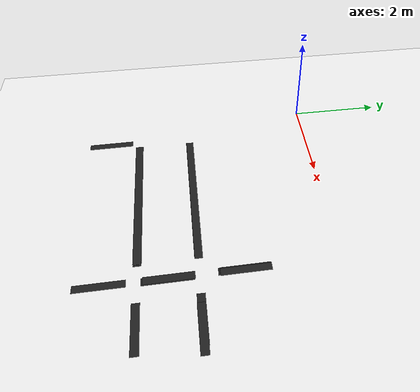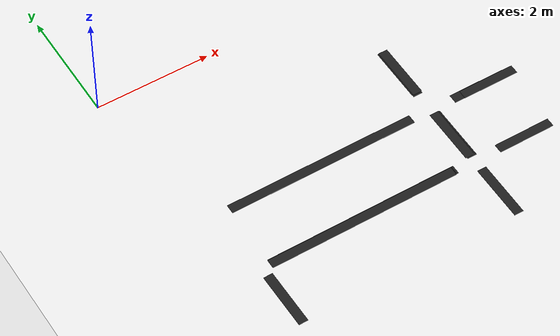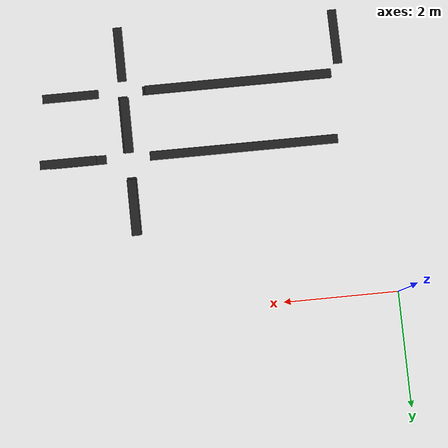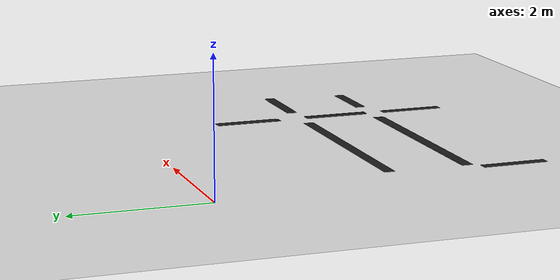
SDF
<sdf version="1.7">
 <world name="default">
  <model name="ground_plane">
   <static>1</static>
   <link name="link">
    <collision name="collision">
     <geometry><plane><normal>0 0 1</normal><size>100 100</size></plane></geometry>
     <surface>
      <contact><collide_bitmask>65535</collide_bitmask></contact>
      <friction><ode><mu>100</mu><mu2>50</mu2></ode></friction>
     </surface>
    </collision>
    <visual name="visual">
     <cast_shadows>0</cast_shadows>
     <geometry><plane><normal>0 0 1</normal><size>100 100</size></plane></geometry>
     <material>
      <script><uri>file://media/materials/scripts/gazebo.material</uri><name>Gazebo/White</name></script>
     </material>
    </visual>
   </link>
  </model>
  <model name="unit_box_clone_0_clone_clone_0_clone_clone_clone">
   <link name="link">
    <inertial>
     <mass>1</mass>
     <inertia>
      <ixx>0.166667</ixx>
      <ixy>0</ixy>
      <ixz>0</ixz>
      <iyy>0.166667</iyy>
      <iyz>0</iyz>
      <izz>0.166667</izz>
     </inertia>
    </inertial>
    <visual name="visual">
     <geometry><box><size>1 0.160776 0.000937</size></box></geometry>
     <material>
      <script><name>Gazebo/Black</name><uri>file://media/materials/scripts/gazebo.material</uri></script>
      <shader type="pixel"><normal_map>__default__</normal_map></shader>
      <ambient>0 0 0 1</ambient>
      <diffuse>0 0 0 1</diffuse>
      <specular>0.1 0.1 0.1 1</specular>
      <emissive>0 0 0 1</emissive>
     </material>
    </visual>
    <collision name="collision">
     <geometry><box><size>1 0.160776 0.000937</size></box></geometry>
     <surface>
      <friction>
       <ode><mu>1</mu><mu2>1</mu2><fdir1>0 0 0</fdir1><slip1>0</slip1><slip2>0</slip2></ode>
       <torsional>
        <coefficient>1</coefficient>
        <patch_radius>0</patch_radius>
        <surface_radius>0</surface_radius>
        <use_patch_radius>1</use_patch_radius>
        <ode><slip>0</slip></ode>
       </torsional>
      </friction>
      <bounce><restitution_coefficient>0</restitution_coefficient><threshold>1e+06</threshold></bounce>
      <contact>
       <collide_without_contact>0</collide_without_contact>
       <collide_without_contact_bitmask>1</collide_without_contact_bitmask>
       <collide_bitmask>1</collide_bitmask>
       <ode>
        <soft_cfm>0</soft_cfm>
        <soft_erp>0.2</soft_erp>
        <kp>1e+13</kp>
        <kd>1</kd>
        <max_vel>0.01</max_vel>
        <min_depth>0</min_depth>
       </ode>
       <bullet>
        <split_impulse>1</split_impulse>
        <split_impulse_penetration_threshold>-0.01</split_impulse_penetration_threshold>
        <soft_cfm>0</soft_cfm>
        <soft_erp>0.2</soft_erp>
        <kp>1e+13</kp>
        <kd>1</kd>
       </bullet>
      </contact>
     </surface>
    </collision>
   </link>
   <static>0</static>
   <pose>4.46753 -4.67773 0.000468 0 0 -1.56225</pose>
  </model>
  <model name="unit_box_clone_0_clone_clone_0_clone_clone_0">
   <link name="link">
    <inertial>
     <mass>1</mass>
     <inertia>
      <ixx>0.166667</ixx>
      <ixy>0</ixy>
      <ixz>0</ixz>
      <iyy>0.166667</iyy>
      <iyz>0</iyz>
      <izz>0.166667</izz>
     </inertia>
    </inertial>
    <visual name="visual">
     <geometry><box><size>1 0.160776 0.000937</size></box></geometry>
     <material>
      <script><name>Gazebo/Black</name><uri>file://media/materials/scripts/gazebo.material</uri></script>
      <shader type="pixel"><normal_map>__default__</normal_map></shader>
      <ambient>0 0 0 1</ambient>
      <diffuse>0 0 0 1</diffuse>
      <specular>0.1 0.1 0.1 1</specular>
      <emissive>0 0 0 1</emissive>
     </material>
    </visual>
    <collision name="collision">
     <geometry><box><size>1 0.160776 0.000937</size></box></geometry>
     <surface>
      <friction>
       <ode><mu>1</mu><mu2>1</mu2><fdir1>0 0 0</fdir1><slip1>0</slip1><slip2>0</slip2></ode>
       <torsional>
        <coefficient>1</coefficient>
        <patch_radius>0</patch_radius>
        <surface_radius>0</surface_radius>
        <use_patch_radius>1</use_patch_radius>
        <ode><slip>0</slip></ode>
       </torsional>
      </friction>
      <bounce><restitution_coefficient>0</restitution_coefficient><threshold>1e+06</threshold></bounce>
      <contact>
       <collide_without_contact>0</collide_without_contact>
       <collide_without_contact_bitmask>1</collide_without_contact_bitmask>
       <collide_bitmask>1</collide_bitmask>
       <ode>
        <soft_cfm>0</soft_cfm>
        <soft_erp>0.2</soft_erp>
        <kp>1e+13</kp>
        <kd>1</kd>
        <max_vel>0.01</max_vel>
        <min_depth>0</min_depth>
       </ode>
       <bullet>
        <split_impulse>1</split_impulse>
        <split_impulse_penetration_threshold>-0.01</split_impulse_penetration_threshold>
        <soft_cfm>0</soft_cfm>
        <soft_erp>0.2</soft_erp>
        <kp>1e+13</kp>
        <kd>1</kd>
       </bullet>
      </contact>
     </surface>
    </collision>
   </link>
   <static>0</static>
   <pose>5.53174 -2.80564 0.001286 2e-06 8e-05 -5.7e-05</pose>
  </model>
  <model name="unit_box_clone_0_clone_clone_0_clone_clone_clone_0">
   <link name="link">
    <inertial>
     <mass>1</mass>
     <inertia>
      <ixx>0.166667</ixx>
      <ixy>0</ixy>
      <ixz>0</ixz>
      <iyy>0.166667</iyy>
      <iyz>0</iyz>
      <izz>0.166667</izz>
     </inertia>
    </inertial>
    <visual name="visual">
     <geometry><box><size>1 0.160776 0.000937</size></box></geometry>
     <material>
      <script><name>Gazebo/Black</name><uri>file://media/materials/scripts/gazebo.material</uri></script>
      <shader type="pixel"><normal_map>__default__</normal_map></shader>
      <ambient>0 0 0 1</ambient>
      <diffuse>0 0 0 1</diffuse>
      <specular>0.1 0.1 0.1 1</specular>
      <emissive>0 0 0 1</emissive>
     </material>
    </visual>
    <collision name="collision">
     <geometry><box><size>1 0.160776 0.000937</size></box></geometry>
     <surface>
      <friction>
       <ode><mu>1</mu><mu2>1</mu2><fdir1>0 0 0</fdir1><slip1>0</slip1><slip2>0</slip2></ode>
       <torsional>
        <coefficient>1</coefficient>
        <patch_radius>0</patch_radius>
        <surface_radius>0</surface_radius>
        <use_patch_radius>1</use_patch_radius>
        <ode><slip>0</slip></ode>
       </torsional>
      </friction>
      <bounce><restitution_coefficient>0</restitution_coefficient><threshold>1e+06</threshold></bounce>
      <contact>
       <collide_without_contact>0</collide_without_contact>
       <collide_without_contact_bitmask>1</collide_without_contact_bitmask>
       <collide_bitmask>1</collide_bitmask>
       <ode>
        <soft_cfm>0</soft_cfm>
        <soft_erp>0.2</soft_erp>
        <kp>1e+13</kp>
        <kd>1</kd>
        <max_vel>0.01</max_vel>
        <min_depth>0</min_depth>
       </ode>
       <bullet>
        <split_impulse>1</split_impulse>
        <split_impulse_penetration_threshold>-0.01</split_impulse_penetration_threshold>
        <soft_cfm>0</soft_cfm>
        <soft_erp>0.2</soft_erp>
        <kp>1e+13</kp>
        <kd>1</kd>
       </bullet>
      </contact>
     </surface>
    </collision>
   </link>
   <static>0</static>
   <pose>4.43384 -1.93877 0.000407 -1e-06 -0.000124 -1.56196</pose>
  </model>
  <model name="unit_box_clone_0_clone_clone_0_clone_clone_0_clone">
   <link name="link">
    <inertial>
     <mass>1</mass>
     <inertia>
      <ixx>0.166667</ixx>
      <ixy>0</ixy>
      <ixz>0</ixz>
      <iyy>0.166667</iyy>
      <iyz>0</iyz>
      <izz>0.166667</izz>
     </inertia>
    </inertial>
    <visual name="visual">
     <geometry><box><size>1 0.160776 0.000937</size></box></geometry>
     <material>
      <script><name>Gazebo/Black</name><uri>file://media/materials/scripts/gazebo.material</uri></script>
      <shader type="pixel"><normal_map>__default__</normal_map></shader>
      <ambient>0 0 0 1</ambient>
      <diffuse>0 0 0 1</diffuse>
      <specular>0.1 0.1 0.1 1</specular>
      <emissive>0 0 0 1</emissive>
     </material>
    </visual>
    <collision name="collision">
     <geometry><box><size>1 0.160776 0.000937</size></box></geometry>
     <surface>
      <friction>
       <ode><mu>1</mu><mu2>1</mu2><fdir1>0 0 0</fdir1><slip1>0</slip1><slip2>0</slip2></ode>
       <torsional>
        <coefficient>1</coefficient>
        <patch_radius>0</patch_radius>
        <surface_radius>0</surface_radius>
        <use_patch_radius>1</use_patch_radius>
        <ode><slip>0</slip></ode>
       </torsional>
      </friction>
      <bounce><restitution_coefficient>0</restitution_coefficient><threshold>1e+06</threshold></bounce>
      <contact>
       <collide_without_contact>0</collide_without_contact>
       <collide_without_contact_bitmask>1</collide_without_contact_bitmask>
       <collide_bitmask>1</collide_bitmask>
       <ode>
        <soft_cfm>0</soft_cfm>
        <soft_erp>0.2</soft_erp>
        <kp>1e+13</kp>
        <kd>1</kd>
        <max_vel>0.01</max_vel>
        <min_depth>0</min_depth>
       </ode>
       <bullet>
        <split_impulse>1</split_impulse>
        <split_impulse_penetration_threshold>-0.01</split_impulse_penetration_threshold>
        <soft_cfm>0</soft_cfm>
        <soft_erp>0.2</soft_erp>
        <kp>1e+13</kp>
        <kd>1</kd>
       </bullet>
      </contact>
     </surface>
    </collision>
   </link>
   <static>0</static>
   <pose>5.39965 -3.98824 0.000468 0 -0 0.00022</pose>
  </model>
  <model name="unit_box_clone_0_clone_clone_0_clone_clone_clone_2">
   <link name="link">
    <inertial>
     <mass>1</mass>
     <inertia>
      <ixx>0.166667</ixx>
      <ixy>0</ixy>
      <ixz>0</ixz>
      <iyy>0.166667</iyy>
      <iyz>0</iyz>
      <izz>0.166667</izz>
     </inertia>
    </inertial>
    <visual name="visual">
     <geometry><box><size>1 0.160776 0.000937</size></box></geometry>
     <material>
      <script><name>Gazebo/Black</name><uri>file://media/materials/scripts/gazebo.material</uri></script>
      <shader type="pixel"><normal_map>__default__</normal_map></shader>
      <ambient>0 0 0 1</ambient>
      <diffuse>0 0 0 1</diffuse>
      <specular>0.1 0.1 0.1 1</specular>
      <emissive>0 0 0 1</emissive>
     </material>
    </visual>
    <collision name="collision">
     <geometry><box><size>1 0.160776 0.000937</size></box></geometry>
     <surface>
      <friction>
       <ode><mu>1</mu><mu2>1</mu2><fdir1>0 0 0</fdir1><slip1>0</slip1><slip2>0</slip2></ode>
       <torsional>
        <coefficient>1</coefficient>
        <patch_radius>0</patch_radius>
        <surface_radius>0</surface_radius>
        <use_patch_radius>1</use_patch_radius>
        <ode><slip>0</slip></ode>
       </torsional>
      </friction>
      <bounce><restitution_coefficient>0</restitution_coefficient><threshold>1e+06</threshold></bounce>
      <contact>
       <collide_without_contact>0</collide_without_contact>
       <collide_without_contact_bitmask>1</collide_without_contact_bitmask>
       <collide_bitmask>1</collide_bitmask>
       <ode>
        <soft_cfm>0</soft_cfm>
        <soft_erp>0.2</soft_erp>
        <kp>1e+13</kp>
        <kd>1</kd>
        <max_vel>0.01</max_vel>
        <min_depth>0</min_depth>
       </ode>
       <bullet>
        <split_impulse>1</split_impulse>
        <split_impulse_penetration_threshold>-0.01</split_impulse_penetration_threshold>
        <soft_cfm>0</soft_cfm>
        <soft_erp>0.2</soft_erp>
        <kp>1e+13</kp>
        <kd>1</kd>
       </bullet>
      </contact>
     </surface>
    </collision>
   </link>
   <static>0</static>
   <pose>0.605278 -4.64307 0.001921 7e-06 -2.9e-05 -1.56183</pose>
  </model>
  <model name="unit_box_clone_0_clone_clone_0_clone_clone_clone_3">
   <link name="link">
    <inertial>
     <mass>1</mass>
     <inertia>
      <ixx>0.166667</ixx>
      <ixy>0</ixy>
      <ixz>0</ixz>
      <iyy>0.166667</iyy>
      <iyz>0</iyz>
      <izz>0.166667</izz>
     </inertia>
    </inertial>
    <visual name="visual">
     <geometry><box><size>1 0.160776 0.000937</size></box></geometry>
     <material>
      <script><name>Gazebo/Black</name><uri>file://media/materials/scripts/gazebo.material</uri></script>
      <shader type="pixel"><normal_map>__default__</normal_map></shader>
      <ambient>0 0 0 1</ambient>
      <diffuse>0 0 0 1</diffuse>
      <specular>0.1 0.1 0.1 1</specular>
      <emissive>0 0 0 1</emissive>
     </material>
    </visual>
    <collision name="collision">
     <geometry><box><size>1 0.160776 0.000937</size></box></geometry>
     <surface>
      <friction>
       <ode><mu>1</mu><mu2>1</mu2><fdir1>0 0 0</fdir1><slip1>0</slip1><slip2>0</slip2></ode>
       <torsional>
        <coefficient>1</coefficient>
        <patch_radius>0</patch_radius>
        <surface_radius>0</surface_radius>
        <use_patch_radius>1</use_patch_radius>
        <ode><slip>0</slip></ode>
       </torsional>
      </friction>
      <bounce><restitution_coefficient>0</restitution_coefficient><threshold>1e+06</threshold></bounce>
      <contact>
       <collide_without_contact>0</collide_without_contact>
       <collide_without_contact_bitmask>1</collide_without_contact_bitmask>
       <collide_bitmask>1</collide_bitmask>
       <ode>
        <soft_cfm>0</soft_cfm>
        <soft_erp>0.2</soft_erp>
        <kp>1e+13</kp>
        <kd>1</kd>
        <max_vel>0.01</max_vel>
        <min_depth>0</min_depth>
       </ode>
       <bullet>
        <split_impulse>1</split_impulse>
        <split_impulse_penetration_threshold>-0.01</split_impulse_penetration_threshold>
        <soft_cfm>0</soft_cfm>
        <soft_erp>0.2</soft_erp>
        <kp>1e+13</kp>
        <kd>1</kd>
       </bullet>
      </contact>
     </surface>
    </collision>
   </link>
   <static>0</static>
   <pose>4.47382 -3.3851 0.000432 0 -7.4e-05 -1.562</pose>
  </model>
  <model name="unit_box_clone_0_clone_clone_0_clone_clone_clone_2_clone_2">
   <link name="link">
    <inertial>
     <mass>1</mass>
     <inertia>
      <ixx>0.166667</ixx>
      <ixy>0</ixy>
      <ixz>0</ixz>
      <iyy>0.166667</iyy>
      <iyz>0</iyz>
      <izz>0.166667</izz>
     </inertia>
    </inertial>
    <visual name="visual">
     <geometry><box><size>1 0.160776 0.000937</size></box></geometry>
     <material>
      <script><name>Gazebo/Black</name><uri>file://media/materials/scripts/gazebo.material</uri></script>
      <shader type="pixel"><normal_map>__default__</normal_map></shader>
      <ambient>0 0 0 1</ambient>
      <diffuse>0 0 0 1</diffuse>
      <specular>0.1 0.1 0.1 1</specular>
      <emissive>0 0 0 1</emissive>
     </material>
    </visual>
    <collision name="collision">
     <geometry><box><size>1 0.160776 0.000937</size></box></geometry>
     <surface>
      <friction>
       <ode><mu>1</mu><mu2>1</mu2><fdir1>0 0 0</fdir1><slip1>0</slip1><slip2>0</slip2></ode>
       <torsional>
        <coefficient>1</coefficient>
        <patch_radius>0</patch_radius>
        <surface_radius>0</surface_radius>
        <use_patch_radius>1</use_patch_radius>
        <ode><slip>0</slip></ode>
       </torsional>
      </friction>
      <bounce><restitution_coefficient>0</restitution_coefficient><threshold>1e+06</threshold></bounce>
      <contact>
       <collide_without_contact>0</collide_without_contact>
       <collide_without_contact_bitmask>1</collide_without_contact_bitmask>
       <collide_bitmask>1</collide_bitmask>
       <ode>
        <soft_cfm>0</soft_cfm>
        <soft_erp>0.2</soft_erp>
        <kp>1e+13</kp>
        <kd>1</kd>
        <max_vel>0.01</max_vel>
        <min_depth>0</min_depth>
       </ode>
       <bullet>
        <split_impulse>1</split_impulse>
        <split_impulse_penetration_threshold>-0.01</split_impulse_penetration_threshold>
        <soft_cfm>0</soft_cfm>
        <soft_erp>0.2</soft_erp>
        <kp>1e+13</kp>
        <kd>1</kd>
       </bullet>
      </contact>
     </surface>
    </collision>
   </link>
   <static>0</static>
   <pose>4.44881 -3.3782 0.002153 2.3e-05 0.000249 -1.5624</pose>
  </model>
  <model name="unit_box_clone_0_clone_clone_0_clone_clone_clone_2_clone_3">
   <link name="link">
    <inertial>
     <mass>1</mass>
     <inertia>
      <ixx>0.166667</ixx>
      <ixy>0</ixy>
      <ixz>0</ixz>
      <iyy>0.166667</iyy>
      <iyz>0</iyz>
      <izz>0.166667</izz>
     </inertia>
    </inertial>
    <visual name="visual">
     <geometry><box><size>1 0.160776 0.000937</size></box></geometry>
     <material>
      <script><name>Gazebo/Black</name><uri>file://media/materials/scripts/gazebo.material</uri></script>
      <shader type="pixel"><normal_map>__default__</normal_map></shader>
      <ambient>0 0 0 1</ambient>
      <diffuse>0 0 0 1</diffuse>
      <specular>0.1 0.1 0.1 1</specular>
      <emissive>0 0 0 1</emissive>
     </material>
    </visual>
    <collision name="collision">
     <geometry><box><size>1 0.160776 0.000937</size></box></geometry>
     <surface>
      <friction>
       <ode><mu>1</mu><mu2>1</mu2><fdir1>0 0 0</fdir1><slip1>0</slip1><slip2>0</slip2></ode>
       <torsional>
        <coefficient>1</coefficient>
        <patch_radius>0</patch_radius>
        <surface_radius>0</surface_radius>
        <use_patch_radius>1</use_patch_radius>
        <ode><slip>0</slip></ode>
       </torsional>
      </friction>
      <bounce><restitution_coefficient>0</restitution_coefficient><threshold>1e+06</threshold></bounce>
      <contact>
       <collide_without_contact>0</collide_without_contact>
       <collide_without_contact_bitmask>1</collide_without_contact_bitmask>
       <collide_bitmask>1</collide_bitmask>
       <ode>
        <soft_cfm>0</soft_cfm>
        <soft_erp>0.2</soft_erp>
        <kp>1e+13</kp>
        <kd>1</kd>
        <max_vel>0.01</max_vel>
        <min_depth>0</min_depth>
       </ode>
       <bullet>
        <split_impulse>1</split_impulse>
        <split_impulse_penetration_threshold>-0.01</split_impulse_penetration_threshold>
        <soft_cfm>0</soft_cfm>
        <soft_erp>0.2</soft_erp>
        <kp>1e+13</kp>
        <kd>1</kd>
       </bullet>
      </contact>
     </surface>
    </collision>
   </link>
   <static>0</static>
   <pose>4.47194 -3.40361 0.001217 2.2e-05 0.000235 -1.5635</pose>
  </model>
  <model name="unit_box_clone_0_clone_clone_0_clone_clone_clone_0_clone_0">
   <link name="link">
    <inertial>
     <mass>1</mass>
     <inertia>
      <ixx>0.166667</ixx>
      <ixy>0</ixy>
      <ixz>0</ixz>
      <iyy>0.166667</iyy>
      <iyz>0</iyz>
      <izz>0.166667</izz>
     </inertia>
    </inertial>
    <visual name="visual">
     <geometry><box><size>1 0.160776 0.000937</size></box></geometry>
     <material>
      <script><name>Gazebo/Black</name><uri>file://media/materials/scripts/gazebo.material</uri></script>
      <shader type="pixel"><normal_map>__default__</normal_map></shader>
      <ambient>0 0 0 1</ambient>
      <diffuse>0 0 0 1</diffuse>
      <specular>0.1 0.1 0.1 1</specular>
      <emissive>0 0 0 1</emissive>
     </material>
    </visual>
    <collision name="collision">
     <geometry><box><size>1 0.160776 0.000937</size></box></geometry>
     <surface>
      <friction>
       <ode><mu>1</mu><mu2>1</mu2><fdir1>0 0 0</fdir1><slip1>0</slip1><slip2>0</slip2></ode>
       <torsional>
        <coefficient>1</coefficient>
        <patch_radius>0</patch_radius>
        <surface_radius>0</surface_radius>
        <use_patch_radius>1</use_patch_radius>
        <ode><slip>0</slip></ode>
       </torsional>
      </friction>
      <bounce><restitution_coefficient>0</restitution_coefficient><threshold>1e+06</threshold></bounce>
      <contact>
       <collide_without_contact>0</collide_without_contact>
       <collide_without_contact_bitmask>1</collide_without_contact_bitmask>
       <collide_bitmask>1</collide_bitmask>
       <ode>
        <soft_cfm>0</soft_cfm>
        <soft_erp>0.2</soft_erp>
        <kp>1e+13</kp>
        <kd>1</kd>
        <max_vel>0.01</max_vel>
        <min_depth>0</min_depth>
       </ode>
       <bullet>
        <split_impulse>1</split_impulse>
        <split_impulse_penetration_threshold>-0.01</split_impulse_penetration_threshold>
        <soft_cfm>0</soft_cfm>
        <soft_erp>0.2</soft_erp>
        <kp>1e+13</kp>
        <kd>1</kd>
       </bullet>
      </contact>
     </surface>
    </collision>
   </link>
   <static>0</static>
   <pose>4.42594 -1.91035 0.001282 -3e-06 -1e-06 -1.56176</pose>
  </model>
  <model name="unit_box_clone_0_clone_clone_0_clone_clone_clone_0_clone_1">
   <link name="link">
    <inertial>
     <mass>1</mass>
     <inertia>
      <ixx>0.166667</ixx>
      <ixy>0</ixy>
      <ixz>0</ixz>
      <iyy>0.166667</iyy>
      <iyz>0</iyz>
      <izz>0.166667</izz>
     </inertia>
    </inertial>
    <visual name="visual">
     <geometry><box><size>1 0.160776 0.000937</size></box></geometry>
     <material>
      <script><name>Gazebo/Black</name><uri>file://media/materials/scripts/gazebo.material</uri></script>
      <shader type="pixel"><normal_map>__default__</normal_map></shader>
      <ambient>0 0 0 1</ambient>
      <diffuse>0 0 0 1</diffuse>
      <specular>0.1 0.1 0.1 1</specular>
      <emissive>0 0 0 1</emissive>
     </material>
    </visual>
    <collision name="collision">
     <geometry><box><size>1 0.160776 0.000937</size></box></geometry>
     <surface>
      <friction>
       <ode><mu>1</mu><mu2>1</mu2><fdir1>0 0 0</fdir1><slip1>0</slip1><slip2>0</slip2></ode>
       <torsional>
        <coefficient>1</coefficient>
        <patch_radius>0</patch_radius>
        <surface_radius>0</surface_radius>
        <use_patch_radius>1</use_patch_radius>
        <ode><slip>0</slip></ode>
       </torsional>
      </friction>
      <bounce><restitution_coefficient>0</restitution_coefficient><threshold>1e+06</threshold></bounce>
      <contact>
       <collide_without_contact>0</collide_without_contact>
       <collide_without_contact_bitmask>1</collide_without_contact_bitmask>
       <collide_bitmask>1</collide_bitmask>
       <ode>
        <soft_cfm>0</soft_cfm>
        <soft_erp>0.2</soft_erp>
        <kp>1e+13</kp>
        <kd>1</kd>
        <max_vel>0.01</max_vel>
        <min_depth>0</min_depth>
       </ode>
       <bullet>
        <split_impulse>1</split_impulse>
        <split_impulse_penetration_threshold>-0.01</split_impulse_penetration_threshold>
        <soft_cfm>0</soft_cfm>
        <soft_erp>0.2</soft_erp>
        <kp>1e+13</kp>
        <kd>1</kd>
       </bullet>
      </contact>
     </surface>
    </collision>
   </link>
   <static>0</static>
   <pose>4.44659 -1.90258 0.00221 -4e-06 1.7e-05 -1.56223</pose>
  </model>
  <model name="unit_box_clone_0_clone_clone_0_clone_clone_0_clone_1">
   <link name="link">
    <inertial>
     <mass>1</mass>
     <inertia>
      <ixx>0.166667</ixx>
      <ixy>0</ixy>
      <ixz>0</ixz>
      <iyy>0.166667</iyy>
      <iyz>0</iyz>
      <izz>0.166667</izz>
     </inertia>
    </inertial>
    <visual name="visual">
     <geometry><box><size>1 0.160776 0.000937</size></box></geometry>
     <material>
      <script><name>Gazebo/Black</name><uri>file://media/materials/scripts/gazebo.material</uri></script>
      <shader type="pixel"><normal_map>__default__</normal_map></shader>
      <ambient>0 0 0 1</ambient>
      <diffuse>0 0 0 1</diffuse>
      <specular>0.1 0.1 0.1 1</specular>
      <emissive>0 0 0 1</emissive>
     </material>
    </visual>
    <collision name="collision">
     <geometry><box><size>1 0.160776 0.000937</size></box></geometry>
     <surface>
      <friction>
       <ode><mu>1</mu><mu2>1</mu2><fdir1>0 0 0</fdir1><slip1>0</slip1><slip2>0</slip2></ode>
       <torsional>
        <coefficient>1</coefficient>
        <patch_radius>0</patch_radius>
        <surface_radius>0</surface_radius>
        <use_patch_radius>1</use_patch_radius>
        <ode><slip>0</slip></ode>
       </torsional>
      </friction>
      <bounce><restitution_coefficient>0</restitution_coefficient><threshold>1e+06</threshold></bounce>
      <contact>
       <collide_without_contact>0</collide_without_contact>
       <collide_without_contact_bitmask>1</collide_without_contact_bitmask>
       <collide_bitmask>1</collide_bitmask>
       <ode>
        <soft_cfm>0</soft_cfm>
        <soft_erp>0.2</soft_erp>
        <kp>1e+13</kp>
        <kd>1</kd>
        <max_vel>0.01</max_vel>
        <min_depth>0</min_depth>
       </ode>
       <bullet>
        <split_impulse>1</split_impulse>
        <split_impulse_penetration_threshold>-0.01</split_impulse_penetration_threshold>
        <soft_cfm>0</soft_cfm>
        <soft_erp>0.2</soft_erp>
        <kp>1e+13</kp>
        <kd>1</kd>
       </bullet>
      </contact>
     </surface>
    </collision>
   </link>
   <static>0</static>
   <pose>5.35396 -2.7984 0.000396 1e-06 0.000146 0.000182</pose>
  </model>
  <model name="unit_box_clone_0_clone_clone_0_clone_clone_4">
   <link name="link">
    <inertial>
     <mass>1</mass>
     <inertia>
      <ixx>0.166667</ixx>
      <ixy>0</ixy>
      <ixz>0</ixz>
      <iyy>0.166667</iyy>
      <iyz>0</iyz>
      <izz>0.166667</izz>
     </inertia>
    </inertial>
    <visual name="visual">
     <geometry><box><size>3.33465 0.160776 0.000937</size></box></geometry>
     <material>
      <script><name>Gazebo/Black</name><uri>file://media/materials/scripts/gazebo.material</uri></script>
      <shader type="pixel"><normal_map>__default__</normal_map></shader>
      <ambient>0 0 0 1</ambient>
      <diffuse>0 0 0 1</diffuse>
      <specular>0.1 0.1 0.1 1</specular>
      <emissive>0 0 0 1</emissive>
     </material>
    </visual>
    <collision name="collision">
     <geometry><box><size>3.33465 0.160776 0.000937</size></box></geometry>
     <surface>
      <friction>
       <ode><mu>1</mu><mu2>1</mu2><fdir1>0 0 0</fdir1><slip1>0</slip1><slip2>0</slip2></ode>
       <torsional>
        <coefficient>1</coefficient>
        <patch_radius>0</patch_radius>
        <surface_radius>0</surface_radius>
        <use_patch_radius>1</use_patch_radius>
        <ode><slip>0</slip></ode>
       </torsional>
      </friction>
      <bounce><restitution_coefficient>0</restitution_coefficient><threshold>1e+06</threshold></bounce>
      <contact>
       <collide_without_contact>0</collide_without_contact>
       <collide_without_contact_bitmask>1</collide_without_contact_bitmask>
       <collide_bitmask>1</collide_bitmask>
       <ode>
        <soft_cfm>0</soft_cfm>
        <soft_erp>0.2</soft_erp>
        <kp>1e+13</kp>
        <kd>1</kd>
        <max_vel>0.01</max_vel>
        <min_depth>0</min_depth>
       </ode>
       <bullet>
        <split_impulse>1</split_impulse>
        <split_impulse_penetration_threshold>-0.01</split_impulse_penetration_threshold>
        <soft_cfm>0</soft_cfm>
        <soft_erp>0.2</soft_erp>
        <kp>1e+13</kp>
        <kd>1</kd>
       </bullet>
      </contact>
     </surface>
    </collision>
   </link>
   <static>0</static>
   <pose>2.41589 -2.78845 0.002094 -1.6e-05 0.000162 -0.000139</pose>
  </model>
  <model name="unit_box_clone_0_clone_clone_0_clone_clone_4_clone">
   <link name="link">
    <inertial>
     <mass>1</mass>
     <inertia>
      <ixx>0.166667</ixx>
      <ixy>0</ixy>
      <ixz>0</ixz>
      <iyy>0.166667</iyy>
      <iyz>0</iyz>
      <izz>0.166667</izz>
     </inertia>
    </inertial>
    <visual name="visual">
     <geometry><box><size>3.33465 0.160776 0.000937</size></box></geometry>
     <material>
      <script><name>Gazebo/Black</name><uri>file://media/materials/scripts/gazebo.material</uri></script>
      <shader type="pixel"><normal_map>__default__</normal_map></shader>
      <ambient>0 0 0 1</ambient>
      <diffuse>0 0 0 1</diffuse>
      <specular>0.1 0.1 0.1 1</specular>
      <emissive>0 0 0 1</emissive>
     </material>
    </visual>
    <collision name="collision">
     <geometry><box><size>3.33465 0.160776 0.000937</size></box></geometry>
     <surface>
      <friction>
       <ode><mu>1</mu><mu2>1</mu2><fdir1>0 0 0</fdir1><slip1>0</slip1><slip2>0</slip2></ode>
       <torsional>
        <coefficient>1</coefficient>
        <patch_radius>0</patch_radius>
        <surface_radius>0</surface_radius>
        <use_patch_radius>1</use_patch_radius>
        <ode><slip>0</slip></ode>
       </torsional>
      </friction>
      <bounce><restitution_coefficient>0</restitution_coefficient><threshold>1e+06</threshold></bounce>
      <contact>
       <collide_without_contact>0</collide_without_contact>
       <collide_without_contact_bitmask>1</collide_without_contact_bitmask>
       <collide_bitmask>1</collide_bitmask>
       <ode>
        <soft_cfm>0</soft_cfm>
        <soft_erp>0.2</soft_erp>
        <kp>1e+13</kp>
        <kd>1</kd>
        <max_vel>0.01</max_vel>
        <min_depth>0</min_depth>
       </ode>
       <bullet>
        <split_impulse>1</split_impulse>
        <split_impulse_penetration_threshold>-0.01</split_impulse_penetration_threshold>
        <soft_cfm>0</soft_cfm>
        <soft_erp>0.2</soft_erp>
        <kp>1e+13</kp>
        <kd>1</kd>
       </bullet>
      </contact>
     </surface>
    </collision>
   </link>
   <static>0</static>
   <pose>2.40667 -3.98502 0.001398 1.7e-05 -0 -9.4e-05</pose>
  </model>
  <model name="unit_box_clone_0_clone_clone_0_clone_clone_4_clone_0">
   <link name="link">
    <inertial>
     <mass>1</mass>
     <inertia>
      <ixx>0.166667</ixx>
      <ixy>0</ixy>
      <ixz>0</ixz>
      <iyy>0.166667</iyy>
      <iyz>0</iyz>
      <izz>0.166667</izz>
     </inertia>
    </inertial>
    <visual name="visual">
     <geometry><box><size>3.33465 0.160776 0.000937</size></box></geometry>
     <material>
      <script><name>Gazebo/Black</name><uri>file://media/materials/scripts/gazebo.material</uri></script>
      <shader type="pixel"><normal_map>__default__</normal_map></shader>
      <ambient>0 0 0 1</ambient>
      <diffuse>0 0 0 1</diffuse>
      <specular>0.1 0.1 0.1 1</specular>
      <emissive>0 0 0 1</emissive>
     </material>
    </visual>
    <collision name="collision">
     <geometry><box><size>3.33465 0.160776 0.000937</size></box></geometry>
     <surface>
      <friction>
       <ode><mu>1</mu><mu2>1</mu2><fdir1>0 0 0</fdir1><slip1>0</slip1><slip2>0</slip2></ode>
       <torsional>
        <coefficient>1</coefficient>
        <patch_radius>0</patch_radius>
        <surface_radius>0</surface_radius>
        <use_patch_radius>1</use_patch_radius>
        <ode><slip>0</slip></ode>
       </torsional>
      </friction>
      <bounce><restitution_coefficient>0</restitution_coefficient><threshold>1e+06</threshold></bounce>
      <contact>
       <collide_without_contact>0</collide_without_contact>
       <collide_without_contact_bitmask>1</collide_without_contact_bitmask>
       <collide_bitmask>1</collide_bitmask>
       <ode>
        <soft_cfm>0</soft_cfm>
        <soft_erp>0.2</soft_erp>
        <kp>1e+13</kp>
        <kd>1</kd>
        <max_vel>0.01</max_vel>
        <min_depth>0</min_depth>
       </ode>
       <bullet>
        <split_impulse>1</split_impulse>
        <split_impulse_penetration_threshold>-0.01</split_impulse_penetration_threshold>
        <soft_cfm>0</soft_cfm>
        <soft_erp>0.2</soft_erp>
        <kp>1e+13</kp>
        <kd>1</kd>
       </bullet>
      </contact>
     </surface>
    </collision>
   </link>
   <static>0</static>
   <pose>2.41765 -3.975 0.000461 3.4e-05 -6e-06 -0.000125</pose>
  </model>
  <model name="unit_box_clone_0_clone_clone_0_clone_clone_4_clone_1">
   <link name="link">
    <inertial>
     <mass>1</mass>
     <inertia>
      <ixx>0.166667</ixx>
      <ixy>0</ixy>
      <ixz>0</ixz>
      <iyy>0.166667</iyy>
      <iyz>0</iyz>
      <izz>0.166667</izz>
     </inertia>
    </inertial>
    <visual name="visual">
     <geometry><box><size>3.33465 0.160776 0.000937</size></box></geometry>
     <material>
      <script><name>Gazebo/Black</name><uri>file://media/materials/scripts/gazebo.material</uri></script>
      <shader type="pixel"><normal_map>__default__</normal_map></shader>
      <ambient>0 0 0 1</ambient>
      <diffuse>0 0 0 1</diffuse>
      <specular>0.1 0.1 0.1 1</specular>
      <emissive>0 0 0 1</emissive>
     </material>
    </visual>
    <collision name="collision">
     <geometry><box><size>3.33465 0.160776 0.000937</size></box></geometry>
     <surface>
      <friction>
       <ode><mu>1</mu><mu2>1</mu2><fdir1>0 0 0</fdir1><slip1>0</slip1><slip2>0</slip2></ode>
       <torsional>
        <coefficient>1</coefficient>
        <patch_radius>0</patch_radius>
        <surface_radius>0</surface_radius>
        <use_patch_radius>1</use_patch_radius>
        <ode><slip>0</slip></ode>
       </torsional>
      </friction>
      <bounce><restitution_coefficient>0</restitution_coefficient><threshold>1e+06</threshold></bounce>
      <contact>
       <collide_without_contact>0</collide_without_contact>
       <collide_without_contact_bitmask>1</collide_without_contact_bitmask>
       <collide_bitmask>1</collide_bitmask>
       <ode>
        <soft_cfm>0</soft_cfm>
        <soft_erp>0.2</soft_erp>
        <kp>1e+13</kp>
        <kd>1</kd>
        <max_vel>0.01</max_vel>
        <min_depth>0</min_depth>
       </ode>
       <bullet>
        <split_impulse>1</split_impulse>
        <split_impulse_penetration_threshold>-0.01</split_impulse_penetration_threshold>
        <soft_cfm>0</soft_cfm>
        <soft_erp>0.2</soft_erp>
        <kp>1e+13</kp>
        <kd>1</kd>
       </bullet>
      </contact>
     </surface>
    </collision>
   </link>
   <static>0</static>
   <pose>2.44958 -3.97478 -0.000167 -1.1e-05 0.000382 -0.0001</pose>
  </model>
  <model name="unit_box_clone_0_clone_clone_0_clone_clone_4_clone_2">
   <link name="link">
    <inertial>
     <mass>1</mass>
     <inertia>
      <ixx>0.166667</ixx>
      <ixy>0</ixy>
      <ixz>0</ixz>
      <iyy>0.166667</iyy>
      <iyz>0</iyz>
      <izz>0.166667</izz>
     </inertia>
    </inertial>
    <visual name="visual">
     <geometry><box><size>3.33465 0.160776 0.000937</size></box></geometry>
     <material>
      <script><name>Gazebo/Black</name><uri>file://media/materials/scripts/gazebo.material</uri></script>
      <shader type="pixel"><normal_map>__default__</normal_map></shader>
      <ambient>0 0 0 1</ambient>
      <diffuse>0 0 0 1</diffuse>
      <specular>0.1 0.1 0.1 1</specular>
      <emissive>0 0 0 1</emissive>
     </material>
    </visual>
    <collision name="collision">
     <geometry><box><size>3.33465 0.160776 0.000937</size></box></geometry>
     <surface>
      <friction>
       <ode><mu>1</mu><mu2>1</mu2><fdir1>0 0 0</fdir1><slip1>0</slip1><slip2>0</slip2></ode>
       <torsional>
        <coefficient>1</coefficient>
        <patch_radius>0</patch_radius>
        <surface_radius>0</surface_radius>
        <use_patch_radius>1</use_patch_radius>
        <ode><slip>0</slip></ode>
       </torsional>
      </friction>
      <bounce><restitution_coefficient>0</restitution_coefficient><threshold>1e+06</threshold></bounce>
      <contact>
       <collide_without_contact>0</collide_without_contact>
       <collide_without_contact_bitmask>1</collide_without_contact_bitmask>
       <collide_bitmask>1</collide_bitmask>
       <ode>
        <soft_cfm>0</soft_cfm>
        <soft_erp>0.2</soft_erp>
        <kp>1e+13</kp>
        <kd>1</kd>
        <max_vel>0.01</max_vel>
        <min_depth>0</min_depth>
       </ode>
       <bullet>
        <split_impulse>1</split_impulse>
        <split_impulse_penetration_threshold>-0.01</split_impulse_penetration_threshold>
        <soft_cfm>0</soft_cfm>
        <soft_erp>0.2</soft_erp>
        <kp>1e+13</kp>
        <kd>1</kd>
       </bullet>
      </contact>
     </surface>
    </collision>
   </link>
   <static>0</static>
   <pose>2.41858 -2.79123 0.000296 1.8e-05 0.000106 -0.000142</pose>
  </model>
  <model name="unit_box_clone_0_clone_clone_0_clone_clone_4_clone_3">
   <link name="link">
    <inertial>
     <mass>1</mass>
     <inertia>
      <ixx>0.166667</ixx>
      <ixy>0</ixy>
      <ixz>0</ixz>
      <iyy>0.166667</iyy>
      <iyz>0</iyz>
      <izz>0.166667</izz>
     </inertia>
    </inertial>
    <visual name="visual">
     <geometry><box><size>3.33465 0.160776 0.000937</size></box></geometry>
     <material>
      <script><name>Gazebo/Black</name><uri>file://media/materials/scripts/gazebo.material</uri></script>
      <shader type="pixel"><normal_map>__default__</normal_map></shader>
      <ambient>0 0 0 1</ambient>
      <diffuse>0 0 0 1</diffuse>
      <specular>0.1 0.1 0.1 1</specular>
      <emissive>0 0 0 1</emissive>
     </material>
    </visual>
    <collision name="collision">
     <geometry><box><size>3.33465 0.160776 0.000937</size></box></geometry>
     <surface>
      <friction>
       <ode><mu>1</mu><mu2>1</mu2><fdir1>0 0 0</fdir1><slip1>0</slip1><slip2>0</slip2></ode>
       <torsional>
        <coefficient>1</coefficient>
        <patch_radius>0</patch_radius>
        <surface_radius>0</surface_radius>
        <use_patch_radius>1</use_patch_radius>
        <ode><slip>0</slip></ode>
       </torsional>
      </friction>
      <bounce><restitution_coefficient>0</restitution_coefficient><threshold>1e+06</threshold></bounce>
      <contact>
       <collide_without_contact>0</collide_without_contact>
       <collide_without_contact_bitmask>1</collide_without_contact_bitmask>
       <collide_bitmask>1</collide_bitmask>
       <ode>
        <soft_cfm>0</soft_cfm>
        <soft_erp>0.2</soft_erp>
        <kp>1e+13</kp>
        <kd>1</kd>
        <max_vel>0.01</max_vel>
        <min_depth>0</min_depth>
       </ode>
       <bullet>
        <split_impulse>1</split_impulse>
        <split_impulse_penetration_threshold>-0.01</split_impulse_penetration_threshold>
        <soft_cfm>0</soft_cfm>
        <soft_erp>0.2</soft_erp>
        <kp>1e+13</kp>
        <kd>1</kd>
       </bullet>
      </contact>
     </surface>
    </collision>
   </link>
   <static>0</static>
   <pose>2.41868 -2.79122 0.001165 -9e-06 0.000148 -0.000149</pose>
  </model>
 </world>
</sdf>
